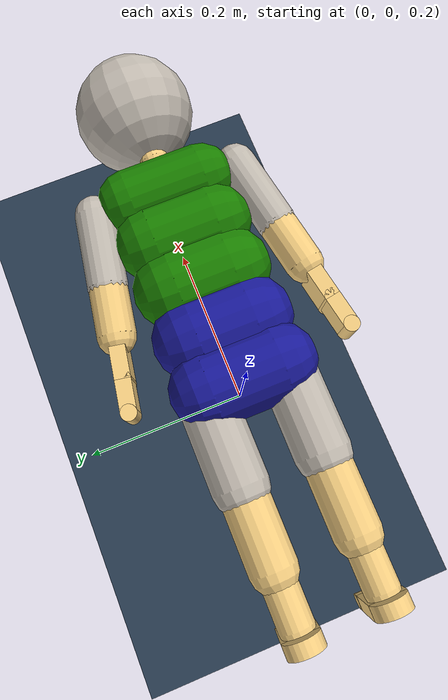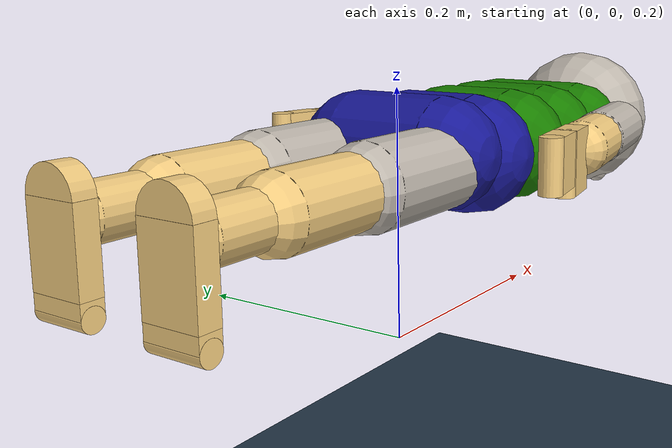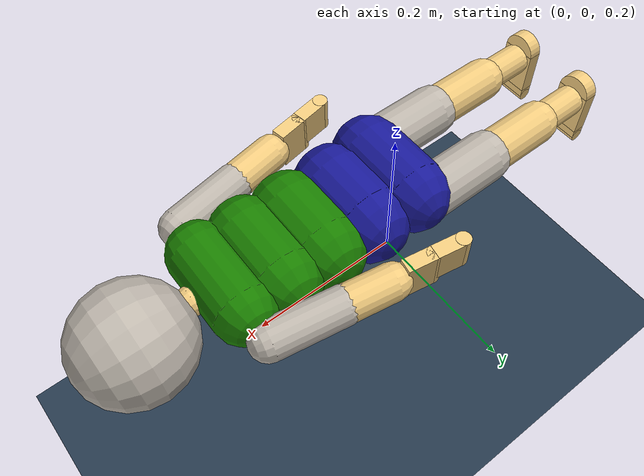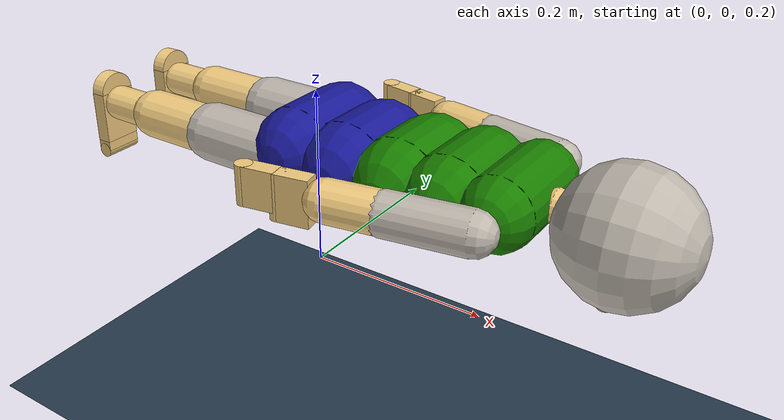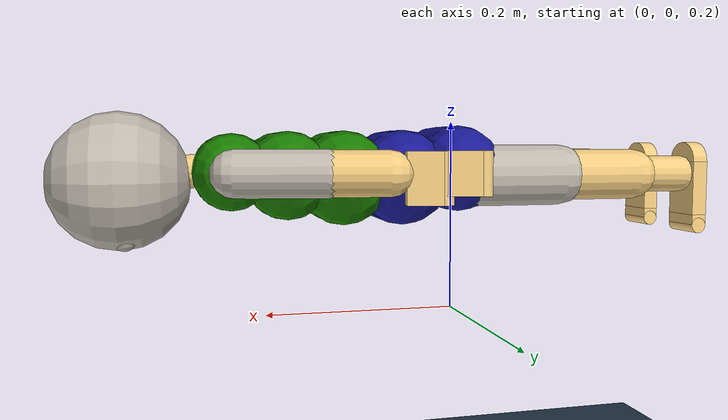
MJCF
<mujoco model="MIMo">

    <compiler inertiafromgeom="true" angle="degree"/>
    <option timestep="0.005" iterations="50" tolerance="1e-10" solver="Newton" jacobian="dense" cone="elliptic" impratio="1.0"/>
    <size nconmax="1000" njmax="5000" nstack="10000000" nuser_cam="3"/>

    <visual>
        <map force="0.1" zfar="30" znear="0.005"/>
        <rgba haze="0.15 0.25 0.35 1"/>
        <quality shadowsize="4096"/>
        <global offwidth="800" offheight="800"/>
    </visual>

    <asset>

        <texture type="skybox" builtin="gradient" rgb1="0.3 0.5 0.7" rgb2="0 0 0" width="512" height="512"/>

        <texture name="texplane" type="2d" builtin="checker" rgb1=".2 .3 .4" rgb2=".1 0.15 0.2" width="512" height="512" mark="cross" markrgb=".8 .8 .8"/>
        <material name="matplane" reflectance="0.3" texture="texplane" texrepeat="1 1" texuniform="true"/>

        <material name="orange" rgba="0.9 0.4 0 1" specular=".2" shininess=".8"/>

    </asset>

	<size nuser_actuator="3" />

	<default>
		<default class="mimo">
        	<joint limited="true" damping=".1" stiffness=".1" armature="0.001" solimplimit="0.98 0.99 0.001 .5 1" solreflimit="0.02 1" />
        	<geom condim="3" material="skin" friction="1 0.005 0.0002" solimp="0.95 0.99 0.001 0.5 1" solref="0.005 1" />
        	<motor ctrlrange="-1 1" ctrllimited="true" forcelimited="true" />
		</default>
    </default>

  <include file="scene_texture_incl.xml" />

	<contact>
		<pair geom1="lb" geom2="ub1" condim="1" />
		<exclude body1="left_eye" body2="upper_body" />
		<exclude body1="right_eye" body2="upper_body" />
	</contact>

	<tendon>
		<fixed class="mimo" name="hip_bend" limited="true" range="-.01 .01">
			<joint joint="robot:hip_bend1" coef="1" />
			<joint joint="robot:hip_bend2" coef="-1" />
		</fixed>
		<fixed class="mimo" name="hip_rotation" limited="true" range="-.01 .01">
			<joint joint="robot:hip_rot1" coef="1" />
			<joint joint="robot:hip_rot2" coef="-1" />
		</fixed>
		<fixed class="mimo" name="hip_lean" limited="true" range="-.01 .01">
			<joint joint="robot:hip_lean1" coef="1" />
			<joint joint="robot:hip_lean2" coef="-.5" />
		</fixed>
		<fixed class="mimo" name="head_limits1" limited="true" range="-2.1 2.1">
			<joint joint="robot:head_swivel" coef="1" />
			<joint joint="robot:head_tilt_side" coef="1" />
		</fixed>
		<fixed class="mimo" name="head_limits2" limited="true" range="-2.1 2.1">
			<joint joint="robot:head_tilt" coef="1" />
			<joint joint="robot:head_tilt_side" coef="1" />
		</fixed>
		<fixed class="mimo" name="head_limits3" limited="true" range="-2.1 2.1">
			<joint joint="robot:head_swivel" coef="1" />
			<joint joint="robot:head_tilt" coef="1" />
		</fixed>
		<fixed class="mimo" name="head_limits1_sym" limited="true" range="-2.1 2.1">
			<joint joint="robot:head_swivel" coef="1" />
			<joint joint="robot:head_tilt_side" coef="-1" />
		</fixed>
		<fixed class="mimo" name="head_limits2_sym" limited="true" range="-2.1 2.1">
			<joint joint="robot:head_tilt" coef="1" />
			<joint joint="robot:head_tilt_side" coef="-1" />
		</fixed>
		<fixed class="mimo" name="head_limits3_sym" limited="true" range="-2.1 2.1">
			<joint joint="robot:head_swivel" coef="1" />
			<joint joint="robot:head_tilt" coef="-1" />
		</fixed>
	</tendon>

	<sensor>
		<accelerometer name="vestibular_acc" site="vestibular" />
		<gyro name="vestibular_gyro" site="vestibular" />

		<torque name="proprio:neck" site="torque_neck" />
		<torque name="proprio:left_eye" site="torque_left_eye" />
		<torque name="proprio:right_eye" site="torque_right_eye" />

		<torque name="proprio:chest" site="torque_chest" />
		<torque name="proprio:trunk_upper" site="torque_ub" />
		<torque name="proprio:trunk_lower" site="torque_lb" />

		<torque name="proprio:right_shoulder" site="torque_right_shoulder" />
		<torque name="proprio:right_elbow" site="torque_right_elbow" />
		<torque name="proprio:right_wrist" site="torque_right_wrist" />
		<torque name="proprio:right_fingers" site="torque_right_fingers" />

		<torque name="proprio:left_shoulder" site="torque_left_shoulder" />
		<torque name="proprio:left_elbow" site="torque_left_elbow" />
		<torque name="proprio:left_wrist" site="torque_left_wrist" />
		<torque name="proprio:left_fingers" site="torque_left_fingers" />

		<torque name="proprio:right_hip" site="torque_right_hip" />
		<torque name="proprio:right_knee" site="torque_right_knee" />
		<torque name="proprio:right_ankle" site="torque_right_ankle" />
		<torque name="proprio:right_toes" site="torque_right_toes" />

		<torque name="proprio:left_hip" site="torque_left_hip" />
		<torque name="proprio:left_knee" site="torque_left_knee" />
		<torque name="proprio:left_ankle" site="torque_left_ankle" />
		<torque name="proprio:left_toes" site="torque_left_toes" />

		<framelinvel name="kobayashi:left_wrist" objtype="site" objname="KOBAYASHI_LWrist" />
		<framelinvel name="kobayashi:right_wrist" objtype="site" objname="KOBAYASHI_RWrist" />
		<framelinvel name="kobayashi:left_ankle" objtype="site" objname="KOBAYASHI_LAnkle" />
		<framelinvel name="kobayashi:right_ankle" objtype="site" objname="KOBAYASHI_RAnkle" />
		<framelinvel name="kobayashi:torso" objtype="site" objname="KOBAYASHI_Torso" />
	</sensor>

  <include file="../../mimo/age/act/act_1_mo.xml" />

	<equality>
		<joint name="robot:hip_lean1" joint1="robot:hip_lean1" active="false" polycoef="0 1 0 0 0" />
		<joint name="robot:hip_rot1" joint1="robot:hip_rot1" active="false" polycoef="0 1 0 0 0" />
		<joint name="robot:hip_bend1" joint1="robot:hip_bend1" active="false" polycoef="0 1 0 0 0" />
		<joint name="robot:hip_lean2" joint1="robot:hip_lean2" active="false" polycoef="0 1 0 0 0" />
		<joint name="robot:hip_rot2" joint1="robot:hip_rot2" active="false" polycoef="0 1 0 0 0" />
		<joint name="robot:hip_bend2" joint1="robot:hip_bend2" active="false" polycoef="0 1 0 0 0" />
		<joint name="robot:head_swivel" joint1="robot:head_swivel" active="false" polycoef="0 1 0 0 0" />
		<joint name="robot:head_tilt" joint1="robot:head_tilt" active="false" polycoef="0 1 0 0 0" />
		<joint name="robot:head_tilt_side" joint1="robot:head_tilt_side" active="false" polycoef="0 1 0 0 0" />
		<joint name="robot:left_eye_horizontal" joint1="robot:left_eye_horizontal" active="false" polycoef="0 1 0 0 0" />
		<joint name="robot:left_eye_vertical" joint1="robot:left_eye_vertical" active="false" polycoef="0 1 0 0 0" />
		<joint name="robot:left_eye_torsional" joint1="robot:left_eye_torsional" active="false" polycoef="0 1 0 0 0" />
		<joint name="robot:right_eye_horizontal" joint1="robot:right_eye_horizontal" active="false" polycoef="0 1 0 0 0" />
		<joint name="robot:right_eye_vertical" joint1="robot:right_eye_vertical" active="false" polycoef="0 1 0 0 0" />
		<joint name="robot:right_eye_torsional" joint1="robot:right_eye_torsional" active="false" polycoef="0 1 0 0 0" />
		<joint name="robot:right_shoulder_horizontal" joint1="robot:right_shoulder_horizontal" active="false" polycoef="0 1 0 0 0" />
		<joint name="robot:right_shoulder_ad_ab" joint1="robot:right_shoulder_ad_ab" active="false" polycoef="0 1 0 0 0" />
		<joint name="robot:right_shoulder_rotation" joint1="robot:right_shoulder_rotation" active="false" polycoef="0 1 0 0 0" />
		<joint name="robot:right_elbow" joint1="robot:right_elbow" active="false" polycoef="0 1 0 0 0" />
		<joint name="robot:right_hand1" joint1="robot:right_hand1" active="false" polycoef="0 1 0 0 0" />
		<joint name="robot:right_hand2" joint1="robot:right_hand2" active="false" polycoef="0 1 0 0 0" />
		<joint name="robot:right_hand3" joint1="robot:right_hand3" active="false" polycoef="0 1 0 0 0" />
		<joint name="robot:right_fingers" joint1="robot:right_fingers" active="false" polycoef="0 1 0 0 0" />
		<joint name="robot:left_shoulder_horizontal" joint1="robot:left_shoulder_horizontal" active="false" polycoef="0 1 0 0 0" />
		<joint name="robot:left_shoulder_ad_ab" joint1="robot:left_shoulder_ad_ab" active="false" polycoef="0 1 0 0 0" />
		<joint name="robot:left_shoulder_rotation" joint1="robot:left_shoulder_rotation" active="false" polycoef="0 1 0 0 0" />
		<joint name="robot:left_elbow" joint1="robot:left_elbow" active="false" polycoef="0 1 0 0 0" />
		<joint name="robot:left_hand1" joint1="robot:left_hand1" active="false" polycoef="0 1 0 0 0" />
		<joint name="robot:left_hand2" joint1="robot:left_hand2" active="false" polycoef="0 1 0 0 0" />
		<joint name="robot:left_hand3" joint1="robot:left_hand3" active="false" polycoef="0 1 0 0 0" />
		<joint name="robot:left_fingers" joint1="robot:left_fingers" active="false" polycoef="0 1 0 0 0" />
		<joint name="robot:right_hip1" joint1="robot:right_hip1" active="false" polycoef="0 1 0 0 0" />
		<joint name="robot:right_hip2" joint1="robot:right_hip2" active="false" polycoef="0 1 0 0 0" />
		<joint name="robot:right_hip3" joint1="robot:right_hip3" active="false" polycoef="0 1 0 0 0" />
		<joint name="robot:right_knee" joint1="robot:right_knee" active="false" polycoef="0 1 0 0 0" />
		<joint name="robot:right_foot1" joint1="robot:right_foot1" active="false" polycoef="0 1 0 0 0" />
		<joint name="robot:right_foot2" joint1="robot:right_foot2" active="false" polycoef="0 1 0 0 0" />
		<joint name="robot:right_foot3" joint1="robot:right_foot3" active="false" polycoef="0 1 0 0 0" />
		<joint name="robot:right_toes" joint1="robot:right_toes" active="false" polycoef="0 1 0 0 0" />
		<joint name="robot:left_hip1" joint1="robot:left_hip1" active="false" polycoef="0 1 0 0 0" />
		<joint name="robot:left_hip2" joint1="robot:left_hip2" active="false" polycoef="0 1 0 0 0" />
		<joint name="robot:left_hip3" joint1="robot:left_hip3" active="false" polycoef="0 1 0 0 0" />
		<joint name="robot:left_knee" joint1="robot:left_knee" active="false" polycoef="0 1 0 0 0" />
		<joint name="robot:left_foot1" joint1="robot:left_foot1" active="false" polycoef="0 1 0 0 0" />
		<joint name="robot:left_foot2" joint1="robot:left_foot2" active="false" polycoef="0 1 0 0 0" />
		<joint name="robot:left_foot3" joint1="robot:left_foot3" active="false" polycoef="0 1 0 0 0" />
		<joint name="robot:left_toes" joint1="robot:left_toes" active="false" polycoef="0 1 0 0 0" />
	</equality>

    <equality>
        <weld body1="left_eye" body2="head"/>
        <weld body1="right_eye" body2="head"/>
    </equality>

    <worldbody>

        <geom name="floor" pos="0 0 0" size="0 0 .25" type="plane" material="matplane" condim="3"/>

        <light directional="false" diffuse=".4 .4 .4" specular="0 0 0" pos="0 0 10" dir="0 0 -1" castshadow="false"/>
        <light mode="targetbodycom" target="upper_body" directional="false" diffuse=".75 .75 .75" specular="0.3 0.3 0.3" pos="3 0 5" dir="0 0 -1"/>

        <body name="mimo_location" pos="0 0 0.35" euler="0 90 0">
            <freejoint name="mimo_location"/>
						<include file="../../mimo/age/body/body_6_mo.xml" />
        </body>

        <camera name="corner" pos="3 -3 3" fovy="20" mode="targetbody" target="mimo_location"/>
        <camera name="top" pos="0 0 1.4" euler="0 0 -90" mode="fixed"/>
        <camera name="side1" pos="2 0 .5" euler="90 90 0" mode="fixed"/>
        <camera name="side2" pos="0 2 .5" euler="90 180 0" mode="fixed"/>
        <camera name="closeup" pos="0.25 -0.25 1" mode="targetbody" target="mimo_location"/>

    </worldbody>

</mujoco>

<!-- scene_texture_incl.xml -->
<mujocoinclude>
  <asset>

		<texture name="tex_head_default" type="cube" fileright="../../tex/head_front.png" fileleft="../../tex/head_back.png" fileup="../../tex/head_left.png" filedown="../../tex/head_right.png" filefront="../../tex/head_top.png" rgb1="0.95 .8 .5" />
		<texture name="tex_head_happy" type="cube" fileright="../../tex/head_front_happy.png" fileleft="../../tex/head_back.png" fileup="../../tex/head_left.png" filedown="../../tex/head_right.png" filefront="../../tex/head_top.png" rgb1="0.95 .8 .5" />
		<texture name="tex_head_sad" type="cube" fileright="../../tex/head_front_sad.png" fileleft="../../tex/head_back.png" fileup="../../tex/head_left.png" filedown="../../tex/head_right.png" filefront="../../tex/head_top.png" rgb1="0.95 .8 .5" />
		<texture name="tex_head_surprised" type="cube" fileright="../../tex/head_front_surprised.png" fileleft="../../tex/head_back.png" fileup="../../tex/head_left.png" filedown="../../tex/head_right.png" filefront="../../tex/head_top.png" rgb1="0.95 .8 .5" />
		<texture name="tex_head_angry" type="cube" fileright="../../tex/head_front_angry.png" fileleft="../../tex/head_back.png" fileup="../../tex/head_left.png" filedown="../../tex/head_right.png" filefront="../../tex/head_top.png" rgb1="0.95 .8 .5" />
		<texture name="tex_head_disgusted" type="cube" fileright="../../tex/head_front_disgusted.png" fileleft="../../tex/head_back.png" fileup="../../tex/head_left.png" filedown="../../tex/head_right.png" filefront="../../tex/head_top.png" rgb1="0.95 .8 .5" />
		<texture name="tex_head_scared" type="cube" fileright="../../tex/head_front_scared.png" fileleft="../../tex/head_back.png" fileup="../../tex/head_left.png" filedown="../../tex/head_right.png" filefront="../../tex/head_top.png" rgb1="0.95 .8 .5" />
		<texture name="tex_top_sleeve" type="cube" fileright="../../tex/sleeve_right.png" fileleft="../../tex/sleeve_left.png" fileup="../../tex/sleeve_up.png" filedown="../../tex/sleeve_down.png" filefront="../../tex/sleeve_front.png" fileback="../../tex/sleeve_back.png" rgb1="0.95 .8 .5" />
		<texture name="tex_pants_leg" type="cube" fileright="../../tex/leg_right.png" fileleft="../../tex/leg_left.png" fileup="../../tex/leg_up.png" filedown="../../tex/leg_down.png" filefront="../../tex/leg_front.png" fileback="../../tex/leg_back.png" rgb1="0.95 .8 .5" />
		<texture name="tex_eye_left" type="cube" fileright="../../tex/eye_pupil_left.png" rgb1="1 1 1" />
		<texture name="tex_eye_right" type="cube" fileright="../../tex/eye_pupil_right.png" rgb1="1 1 1" />

		<material name="skin" rgba="0.95 0.8 0.5 1" specular=".15" shininess=".7" />
		<material name="buttons" rgba=".05 .05 .05 1" specular=".9" shininess=".9" />
		<material name="head" texture="tex_head_default" texuniform="true" specular=".0" shininess=".0" />
		<material name="top_up" rgba=".1 .5 0.0 1" specular=".0" shininess=".0" />
		<material name="top_middle" rgba=".1 .5 0.0 1" specular=".0" shininess=".0" />
		<material name="top_down" rgba=".1 .5 0.0 1" specular=".0" shininess=".0" />
		<material name="top_sleeve" texture="tex_top_sleeve" texuniform="true" specular=".0" shininess=".0" />
		<material name="pants_up" rgba="0.1 0.1 0.6 1" specular=".0" shininess=".0" />
		<material name="pants_down" rgba="0.1 0.1 0.6 1" specular=".0" shininess=".0" />
		<material name="pants_leg" texture="tex_pants_leg" texuniform="true" specular=".0" shininess=".0" />
		<material name="eye_left" texture="tex_eye_left" texuniform="true" specular=".0" shininess=".0" />
		<material name="eye_right" texture="tex_eye_right" texuniform="true" specular=".0" shininess=".0" />

	</asset>
</mujocoinclude>

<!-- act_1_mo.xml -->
<mujocoinclude>
  <actuator>
    <motor class="mimo" name="act:hip_bend" joint="robot:hip_bend1" gear="4.792849908097783" forcerange="-1 .765" user=".8574 32.93 22.97" />
    <motor class="mimo" name="act:hip_twist" joint="robot:hip_rot1" gear="1.6444277094891258" forcerange="-1 1" user="1.699 8.136 8.136" />
    <motor class="mimo" name="act:hip_lean" joint="robot:hip_lean1" gear="3.2843253150953613" forcerange="-1 1" user="1.278 1.264 1.264" />

    <motor class="mimo" name="act:chest_twist" joint="robot:chest_rot" gear="0.1630837397840455" forcerange="-1 1" user="1.699 8.136 8.136" />
    <motor class="mimo" name="act:chest_lean" joint="robot:chest_lean" gear="0.326167479568091" forcerange="-1 1" user="1.278 1.264 1.264" />

    <motor class="mimo" name="act:head_swivel" joint="robot:head_swivel" gear="1.0051784555238277" forcerange="-1 1" user=".6665 24.87 24.87" />
    <motor class="mimo" name="act:head_tilt" joint="robot:head_tilt" gear="1.8428271684603503" forcerange="-1 .55" user=".9338 31.39 16.86" />
    <motor class="mimo" name="act:head_tilt_side" joint="robot:head_tilt_side" gear="1.0051784555238277" forcerange="-1 1" user="1.068 15.69 15.69" />

    <motor class="mimo" name="act:left_eye_horizontal" joint="robot:left_eye_horizontal" gear="0.003015535366571483" forcerange="-1 1" user="5.110 .03025 .03025" />
    <motor class="mimo" name="act:left_eye_vertical" joint="robot:left_eye_vertical" gear="0.003015535366571483" forcerange="-1 1" user="6.179 .02619 .02771" />
    <motor class="mimo" name="act:left_eye_torsional" joint="robot:left_eye_torsional" gear="0.0020662001585767566" forcerange="-1 1" user="25.03 .003686 .003686" />
    <motor class="mimo" name="act:right_eye_horizontal" joint="robot:right_eye_horizontal" gear="0.003015535366571483" forcerange="-1 1" user="5.110 .03025 .03025" />
    <motor class="mimo" name="act:right_eye_vertical" joint="robot:right_eye_vertical" gear="0.003015535366571483" forcerange="-1 1" user="6.179 .02619 .02771" />
    <motor class="mimo" name="act:right_eye_torsional" joint="robot:right_eye_torsional" gear="0.0020662001585767566" forcerange="-1 1" user="25.03 .003686 .003686" />

    <motor class="mimo" name="act:right_shoulder_horizontal" joint="robot:right_shoulder_horizontal" gear="0.8428609627943823" forcerange="-1 1" user="1.811 18.80 15.30" />
    <motor class="mimo" name="act:right_shoulder_abduction" joint="robot:right_shoulder_ad_ab" gear="1.873024361765294" forcerange="-.6875 1" user=".8793 44.17 69.23" />
    <motor class="mimo" name="act:right_shoulder_internal" joint="robot:right_shoulder_rotation" gear="1.1706402261033086" forcerange="-1 .64" user="1.498 25.09 17.10" />
    <motor class="mimo" name="act:right_elbow" joint="robot:right_elbow" gear="1.755558656111056" forcerange="-1 .83" user="1.566 35.43 27.04" />
    <motor class="mimo" name="act:right_wrist_rotation" joint="robot:right_hand1" gear="0.29698396926039833" forcerange="-1 1" user="1.513 7.842 7.842" />
    <motor class="mimo" name="act:right_wrist_flexion" joint="robot:right_hand2" gear="0.5260858884041343" forcerange="-1 .57" user="1.455 13.66 7.874" />
    <motor class="mimo" name="act:right_wrist_ulnar" joint="robot:right_hand3" gear="0.4030496725676834" forcerange="-.87 1" user="2.254 5.155 6.021" />
    <motor class="mimo" name="act:right_fingers" joint="robot:right_fingers" gear="0.29274134112810696" forcerange="-1 .33" user="3.019 6.854 2.551" />

    <motor class="mimo" name="act:left_shoulder_horizontal" joint="robot:left_shoulder_horizontal" gear="0.8428609627943823" forcerange="-1 1" user="1.811 18.80 15.30" />
    <motor class="mimo" name="act:left_shoulder_abduction" joint="robot:left_shoulder_ad_ab" gear="1.873024361765294" forcerange="-.6875 1" user=".8793 44.17 69.23" />
    <motor class="mimo" name="act:left_shoulder_internal" joint="robot:left_shoulder_rotation" gear="1.1706402261033086" forcerange="-1 .64" user="1.498 25.09 17.10" />
    <motor class="mimo" name="act:left_elbow" joint="robot:left_elbow" gear="1.755558656111056" forcerange="-1 .83" user="1.566 35.43 27.04" />
    <motor class="mimo" name="act:left_wrist_rotation" joint="robot:left_hand1" gear="0.29698396926039833" forcerange="-1 1" user="1.513 7.842 7.842" />
    <motor class="mimo" name="act:left_wrist_flexion" joint="robot:left_hand2" gear="0.5260858884041343" forcerange="-1 .57" user="1.455 13.66 7.874" />
    <motor class="mimo" name="act:left_wrist_ulnar" joint="robot:left_hand3" gear="0.4030496725676834" forcerange="-.87 1" user="2.254 5.155 6.021" />
    <motor class="mimo" name="act:left_fingers" joint="robot:left_fingers" gear="0.29274134112810696" forcerange="-1 .33" user="3.019 6.854 2.551" />

    <motor class="mimo" name="act:right_hip_flex" joint="robot:right_hip1" gear="2.938787965593561" forcerange="-1 1" user="1.083 71.25 92.49" />
    <motor class="mimo" name="act:right_hip_abduction" joint="robot:right_hip2" gear="2.292254613162978" forcerange="-1 1" user="1.488 24.81 29.20" />
    <motor class="mimo" name="act:right_hip_rotation" joint="robot:right_hip3" gear="1.3004136747751507" forcerange="-.75 1" user="1.860 12.32 15.78" />
    <motor class="mimo" name="act:right_knee" joint="robot:right_knee" gear="4.119053990913367" forcerange="-.65 1" user="1.450 63.16 89.27" />
    <motor class="mimo" name="act:right_foot_flexion" joint="robot:right_foot1" gear="1.4039955411734266" forcerange="-1 .5" user="1.430 21.34 11.87" />
    <motor class="mimo" name="act:right_foot_inversion" joint="robot:right_foot2" gear="0.43085577453999335" forcerange="-.91 1" user="1.988 4.184 4.645" />
    <motor class="mimo" name="act:right_foot_rotation" joint="robot:right_foot3" gear="0.44571287021378625" forcerange="-1 1" user="2.688 3.868 3.625" />
    <motor class="mimo" name="act:right_toes" joint="robot:right_toes" gear="0.12257103930879122" forcerange="-1 .3" user="1.290 2.947 .8440" />

    <motor class="mimo" name="act:left_hip_flex" joint="robot:left_hip1" gear="2.938787965593561" forcerange="-1 1" user="1.083 71.25 92.49" />
    <motor class="mimo" name="act:left_hip_abduction" joint="robot:left_hip2" gear="2.292254613162978" forcerange="-1 1" user="1.488 24.81 29.20" />
    <motor class="mimo" name="act:left_hip_rotation" joint="robot:left_hip3" gear="1.3004136747751507" forcerange="-.75 1" user="1.860 12.32 15.78" />
    <motor class="mimo" name="act:left_knee" joint="robot:left_knee" gear="4.119053990913367" forcerange="-.65 1" user="1.450 63.16 89.27" />
    <motor class="mimo" name="act:left_foot_flexion" joint="robot:left_foot1" gear="1.4039955411734266" forcerange="-1 .5" user="1.430 21.34 11.87" />
    <motor class="mimo" name="act:left_foot_inversion" joint="robot:left_foot2" gear="0.43085577453999335" forcerange="-.91 1" user="1.988 4.184 4.645" />
    <motor class="mimo" name="act:left_foot_rotation" joint="robot:left_foot3" gear="0.44571287021378625" forcerange="-1 1" user="2.688 3.868 3.625" />
    <motor class="mimo" name="act:left_toes" joint="robot:left_toes" gear="0.12257103930879122" forcerange="-1 .3" user="1.290 2.947 .8440" />
  </actuator>
</mujocoinclude>

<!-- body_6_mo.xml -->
<mujocoinclude>
  <body childclass="mimo" name="hip" pos="0 0 0">

		<geom name="lb" type="capsule" size="0.0437457875214777 0.0391889346546571 0.0" mass="0.8768868439294774" material="pants_down" pos="-0.002 0.0 0.004556852866820595" euler="90 0 0" />
		<site name="lowerBody_center" type="sphere" size=".01 .01 .01" pos="0 0 0" />
		<site name="BODY_25:MidHip" type="sphere" size=".005" pos="0.005 0.0 -0.007" rgba="0 0 0 1" />
		<body name="lower_body" pos="0.002 0.0 0.06926416357567303">
			<joint name="robot:hip_lean1" type="hinge" pos="0.0 0.0 -0.048302640388298304" axis="1 0 0" range="-14 14" stiffness="3.38" damping="0.77" frictionloss=".049" armature="0.01" />
			<joint name="robot:hip_rot1" type="hinge" pos="0.0 0.0 -0.048302640388298304" axis="0 0 1" range="-18 18" stiffness="1.45" damping="0.29" frictionloss=".018" armature="0.01" />
			<joint name="robot:hip_bend1" type="hinge" pos="0.0 0.0 -0.048302640388298304" axis="0 1 0" range="-17 30.5" stiffness="2.20" damping="0.84" frictionloss="0.040" armature="0.01" />
			<site name="torque_lb" type="sphere" size="0.01" pos="0 0 0" group="4" />
			<geom name="cb" type="capsule" size="0.048302640388298304 0.031897970067744155 0.0" mass="1.002621395704932" material="pants_up" contype="0" pos="0.005 0.0 -0.007290964586912951" euler="90 0 0" />

			<body name="upper_body" pos="-0.002 0.0 0.08293472217613482">

				<site name="KOBAYASHI_Torso" type="sphere" size="0.01" pos=".047391269814934175 0 0.047391269814934175" rgba="1 0 0 0" />
				<joint name="robot:hip_lean2" type="hinge" pos="0.0 0.0 -0.047391269814934175" axis="1 0 0" range="-27 27" stiffness="1.69" damping="0.38" frictionloss=".024" armature="0.01" />
				<joint name="robot:hip_rot2" type="hinge" pos="0.0 0.0 -0.047391269814934175" axis="0 0 1" range="-18 18" stiffness="1.45" damping="0.29" frictionloss=".018" armature="0.01" />
				<joint name="robot:hip_bend2" type="hinge" pos="0.0 0.0 -0.047391269814934175" axis="0 1 0" range="-17 30.5" stiffness="2.20" damping="0.84" frictionloss="0.040" armature="0.01" />
				<site name="torque_ub" type="sphere" size="0.01" pos="0 0 0" group="4" />
				<geom name="ub1" type="capsule" size="0.047391269814934175 0.031897970067744155 0.0" mass="0.8237467744855468" material="top_down" pos="0.007 0.0 -0.0291638583476518" euler="90 0 0" />
				<geom name="ub2" type="capsule" size="0.04374578752147771 0.03554345236120062 0.0" mass="0.7190562957947261" material="top_middle" pos="0.004 0.0 0.027341117200923568" euler="90 0 0" />
				<geom name="neck" type="capsule" size="0.017150440505860117 1e-06 0.0" mass="0.0" material="skin" pos="0.0 0.0 0.11939054511069958" euler="0 0 0" />

				<body name="chest" pos="0.0 0.0 0.0820233516027707">
					<site name="BODY_25:Neck" type="sphere" size=".005 .005 .005" pos="0.0 0.0 0.0" rgba="0 0 0 1" />
					<joint name="robot:chest_lean" type="hinge" pos="0 0 0" axis="1 0 0" range="-9 9" stiffness="1.69" damping="0.38" frictionloss=".024" armature="0.01" />
					<joint name="robot:chest_rot" type="hinge" pos="0 0 0" axis="0 0 1" range="-18 18" stiffness="1.45" damping="0.29" frictionloss=".018" armature="0.01" />
					<site name="torque_chest" type="sphere" size="0.01" pos="0 0 0" group="4" />
					<geom name="ub3" type="capsule" size="0.03736619350792888 0.04283441694811358 0.0" mass="0.546313221049641" material="top_up" pos="0 0 0" euler="90 0 0" />

					<body name="right_upper_arm" pos="0.0 -0.08582156278323978 0.0" euler="170 0 0">

						<site name="BODY_25:RShoulder" type="sphere" size=".005 .005 .005" pos="0.0 0.0 0.0" rgba="0 0 0 1" />
						<joint name="robot:right_shoulder_horizontal" type="hinge" pos="0 0 0" axis="0 1 -4" range="-28 118" stiffness=".09" damping=".05" frictionloss=".0009" armature="0.004" />
						<joint name="robot:right_shoulder_ad_ab" type="hinge" pos="0 0 0" axis="-1 0 0" range="-84 183" stiffness=".11" damping=".10" frictionloss=".0014" armature="0.004" />
						<joint name="robot:right_shoulder_rotation" type="hinge" pos="0 0 0" axis="0 0 -1" range="-99 67" stiffness=".12" damping=".07" frictionloss=".0008" armature="0.004" />
						<site name="torque_right_shoulder" type="sphere" size="0.01" pos="0 0 0" group="4" />
						<geom name="right_uarm1" type="capsule" material="top_sleeve" size="0.022483809308789283 0.04275018942756355 0.0" mass="0.19541721010750204" pos="0.0 0.0 0.04275018942756355" euler="0 0 0" />
						<body name="right_lower_arm" pos="0.0 -0.0 0.0855003788551271" euler="0 0 0">

							<site name="KOBAYASHI_RWrist" type="sphere" size=".01" pos="0 0.02366 .056" rgba="1 0 0 0" />
							<site name="BODY_25:RElbow" type="sphere" size=".005 .005 .005" pos="0.0 0.0 0.0" rgba="0 0 0 1" />
							<joint name="robot:right_elbow" type="hinge" pos="0 0 0" axis="0 -1 0" springref="-20" range="-146 5" stiffness=".13" damping=".11" frictionloss=".030" armature="0.002" />
							<site name="torque_right_elbow" type="sphere" size="0.01" pos="0 0 0" group="4" />
							<geom name="right_larm" type="capsule" size="0.021708349149845776 0.0283664069880474 0.0" mass="0.1351234166284339" pos="0.0 0.0 0.0283664069880474" />
							<body name="right_hand" pos="0.0 -0.0 0.07035444527790545" euler="0 0 0">
								<site name="BODY_25:RWrist" type="sphere" size=".005 .005 .005" pos="0.0 0.0 0.0" />
								<joint name="robot:right_hand1" type="hinge" pos="0 0 0" axis="0 0 -1" springref="-20" range="-90 90" stiffness=".22" damping=".03" frictionloss=".007" armature="0.001" />
								<joint name="robot:right_hand2" type="hinge" pos="0 0 0" axis="-1 0 0" range="-92 86" stiffness=".33" damping=".11" frictionloss=".007" armature="0.001" />
								<joint name="robot:right_hand3" type="hinge" pos="0 0 0" axis="0 1 0" range="-53 48" stiffness=".38" damping=".11" frictionloss=".007" armature="0.001" />
								<site name="torque_right_wrist" type="sphere" size="0.01" pos="0 0 0" group="4" />
								<geom name="geom:right_hand1" type="box" size="0.024860296384478134 0.00881739308339688 0.017970420575578953" mass="0.02908143889568377" pos="0.00440869654169844 0.0 0.017970420575578953" />
								<geom name="geom:right_hand2" type="cylinder" size="0.00901739308339688 0.024860296384478134 0.0" mass="0.011196587482731345" pos="0.00440869654169844 0.0 0.03594084115115791" euler="0 90 0" />
								<body name="right_fingers" pos="0.0 -0.0 0.03594084115115791">
									<joint name="robot:right_fingers" type="hinge" pos="0 0 0" axis="-1 0 0" springref="-40" range="-160 8" stiffness=".017" damping=".018" frictionloss=".0023" armature="0.0001" />
									<site name="torque_right_fingers" type="sphere" size="0.01" pos="0 0 0" group="4" />
									<geom name="geom:right_fingers1" type="box" size="0.020906624392857284 0.00881739308339688 0.017884024322811748" mass="0.024406588510772854" pos="0.0 0.0 0.017884024322811748" friction="5 0.02 0.01" />
									<geom name="geom:right_fingers2" type="cylinder" size="0.00901739308339688 0.021106624392857282 0.0" mass="0.009488825275122926" pos="0.0 0.0 0.035768048645623496" euler="0 90 0" friction="5 0.02 0.01" />
								</body>
							</body>
						</body>
					</body>

					<body name="left_upper_arm" pos="0.0 0.08582156278323978 0.0" euler="-170 0 0">

						<site name="BODY_25:LShoulder" type="sphere" size=".005 .005 .005" pos="0.0 0.0 0.0" rgba="0 0 0 1" />
						<joint name="robot:left_shoulder_horizontal" type="hinge" pos="0 0 0" axis="0 1 4" range="-28 118" stiffness=".09" damping=".05" frictionloss=".0009" armature="0.004" />
						<joint name="robot:left_shoulder_ad_ab" type="hinge" pos="0 0 0" axis="1 0 0" range="-84 183" stiffness=".11" damping=".10" frictionloss=".0014" armature="0.004" />
						<joint name="robot:left_shoulder_rotation" type="hinge" pos="0 0 0" axis="0 0 1" range="-99 67" stiffness=".12" damping=".07" frictionloss=".0008" armature="0.004" />
						<site name="torque_left_shoulder" type="sphere" size="0.01" pos="0 0 0" group="4" />
						<geom name="left_uarm1" type="capsule" material="top_sleeve" size="0.022483809308789283 0.04275018942756355 0.0" mass="0.19541721010750204" pos="0.0 0.0 0.04275018942756355" euler="0 0 0" />
						<body name="left_lower_arm" pos="0.0 0.0 0.0855003788551271" euler="0 0 0">

							<site name="KOBAYASHI_LWrist" type="sphere" size=".01" pos="0 -0.02366 .056" rgba="1 0 0 0" />
							<site name="BODY_25:LElbow" type="sphere" size=".005 .005 .005" pos="0.0 0.0 0.0" rgba="0 0 0 1" />
							<joint name="robot:left_elbow" type="hinge" pos="0 0 0" axis="0 -1 0" springref="-20" range="-146 5" stiffness=".13" damping=".11" frictionloss=".030" armature="0.002" />
							<site name="torque_left_elbow" type="sphere" size="0.01" pos="0 0 0" group="4" />
							<geom name="left_larm" type="capsule" size="0.021708349149845776 0.0283664069880474 0.0" mass="0.1351234166284339" pos="0.0 0.0 0.0283664069880474" />
							<body name="left_hand" pos="0.0 0.0 0.07035444527790545" euler="0 0 0">
								<site name="BODY_25:LWrist" type="sphere" size=".005 .005 .005" pos="0.0 0.0 0.0" rgba="0 0 0 1" />
								<joint name="robot:left_hand1" type="hinge" pos="0 0 0" axis="0 0 1" springref="-20" range="-90 90" stiffness=".22" damping=".03" frictionloss=".007" armature="0.001" />
								<joint name="robot:left_hand2" type="hinge" pos="0 0 0" axis="1 0 0" range="-92 86" stiffness=".33" damping=".11" frictionloss=".007" armature="0.001" />
								<joint name="robot:left_hand3" type="hinge" pos="0 0 0" axis="0 1 0" range="-53 48" stiffness=".38" damping=".11" frictionloss=".007" armature="0.001" />
								<site name="torque_left_wrist" type="sphere" size="0.01" pos="0 0 0" group="4" />
								<geom name="geom:left_hand1" type="box" size="0.024860296384478134 0.00881739308339688 0.017970420575578953" mass="0.02908143889568377" pos="0.00440869654169844 0.0 0.017970420575578953" />
								<geom name="geom:left_hand2" type="cylinder" size="0.00901739308339688 0.024860296384478134 0.0" mass="0.011196587482731345" pos="0.00440869654169844 0.0 0.03594084115115791" euler="0 90 0" />
								<body name="left_fingers" pos="0.0 0.0 0.03594084115115791">
									<joint name="robot:left_fingers" type="hinge" pos="0 0 0" axis="1 0 0" springref="-40" range="-160 8" stiffness=".017" damping=".018" frictionloss=".0023" armature="0.0001" />
									<site name="torque_left_fingers" type="sphere" size="0.01" pos="0 0 0" group="4" />
									<geom name="geom:left_fingers1" type="box" size="0.020906624392857284 0.00881739308339688 0.017884024322811748" mass="0.024406588510772854" pos="0.0 0.0 0.017884024322811748" friction="5 0.02 0.01" />
									<geom name="geom:left_fingers2" type="cylinder" size="0.00901739308339688 0.021106624392857282 0.0" mass="0.009488825275122926" pos="0.0 0.0 0.035768048645623496" euler="0 90 0" friction="5 0.02 0.01" />
								</body>
							</body>
						</body>
					</body>
				</body>
				<body name="head" pos="0.0 0.0 0.11939154511069958">
					<geom name="head" type="sphere" size="0.06860176202344047 0.0 0.0" mass="1.4430893269165317" material="head" pos="0.00933357306441367 0.0 0.06860176202344047" />
					<site name="vestibular" type="sphere" size="0.01" pos="0.01 0.0 0.06860176202344047" group="4" />
					<site name="torque_neck" type="sphere" size="0.01" pos="0 0 0" group="4" />
					<joint name="robot:head_swivel" type="hinge" pos="0 0 0" axis="0 0 1" range="-111 111" stiffness=".23" damping=".29" frictionloss=".018" armature="0.005" />
					<joint name="robot:head_tilt" type="hinge" pos="0.0 0.0 0.011433627003906746" axis="0 1 0" range="-70 81" stiffness=".45" damping=".53" frictionloss=".018" armature="0.005" />
					<joint name="robot:head_tilt_side" type="hinge" pos="0.0 0.0 0.022867254007813493" axis="1 0 0" range="-70 70" stiffness=".37" damping=".29" frictionloss=".018" armature="0.005" />
					<body name="left_eye" pos="0.0653350114508957 0.022867254007813493 0.0628849485214871">
						<site name="BODY_25:LEye" type="sphere" size=".005 .005 .005" pos="0.0 0.0 0.0" rgba="0 0 0 1" />
						<site name="torque_left_eye" type="sphere" size="0.01" pos="0 0 0" group="4" />
						<joint name="robot:left_eye_horizontal" type="hinge" pos="0 0 0" axis="0 0 1" range="-45 45" stiffness=".00065" damping=".00042" frictionloss=".000054" armature=".0002" />
						<joint name="robot:left_eye_vertical" type="hinge" pos="0 0 0" axis="0 -1 0" range="-47 33" stiffness=".00065" damping=".00042" frictionloss=".000054" armature=".0002" />
						<joint name="robot:left_eye_torsional" type="hinge" pos="0 0 0" axis="-1 0 0" range="-8 8" stiffness=".00267" damping=".00042" frictionloss=".000037" armature=".0002" />
						<geom name="geom:left_eye1" type="sphere" material="eye_left" size="0.010500269697465378 0.0 0.0" mass="0.0051022005445127555" pos="0 0 0" />
						<camera name="eye_left" mode="fixed" fovy="60" pos="0.01125 0 0" euler="90 -90 0" />
					</body>
					<body name="right_eye" pos="0.0653350114508957 -0.022867254007813493 0.0628849485214871">
						<site name="BODY_25:REye" type="sphere" size=".005 .005 .005" pos="0.0 0.0 0.0" rgba="0 0 0 1" />
						<site name="torque_right_eye" type="sphere" size="0.01" pos="0 0 0" group="4" />
						<joint name="robot:right_eye_horizontal" type="hinge" pos="0 0 0" axis="0 0 -1" range="-45 45" stiffness=".00065" damping=".00042" frictionloss=".000054" armature=".0002" />
						<joint name="robot:right_eye_vertical" type="hinge" pos="0 0 0" axis="0 -1 0" range="-47 33" stiffness=".00065" damping=".00042" frictionloss=".000054" armature=".0002" />
						<joint name="robot:right_eye_torsional" type="hinge" pos="0 0 0" axis="1 0 0" range="-8 8" stiffness=".00267" damping=".00042" frictionloss=".000037" armature=".0002" />
						<geom name="geom:right_eye1" type="sphere" material="eye_right" size="0.010500269697465378 0.0 0.0" mass="0.0051022005445127555" pos="0 0 0" />
						<camera name="eye_right" mode="fixed" fovy="60" pos="0.01125 0 0" euler="90 -90 0" />
					</body>
					<site name="BODY_25:Nose" type="sphere" size=".005" pos="0.06393497549123364 0.0 0.04060104283019946" rgba="0 0 0 1" />
					<site name="BODY_25:LEar" type="sphere" size=".005" pos="0.01 0.058334831652585434 0.05366804512037861" rgba="0 0 0 1" />
					<site name="BODY_25:REar" type="sphere" size=".005" pos="0.01 -0.058334831652585434 0.05366804512037861" rgba="0 0 0 1" />
				</body>
			</body>
		</body>

		<body name="right_upper_leg" pos="0.005 -0.046479899241570054 -0.007">

			<joint name="robot:right_hip1" type="hinge" pos="0 0 0" axis="0 1 0" springref="-10" range="-133 20" stiffness="1.72" damping="1.27" frictionloss=".08" armature=".005" />
			<joint name="robot:right_hip2" type="hinge" pos="0 0 0" axis="1 0 0" range="-51 17" stiffness="3.51" damping="1.99" frictionloss=".062" armature=".005" />
			<joint name="robot:right_hip3" type="hinge" pos="0 0 0" axis="0 0 -1" range="-32 41" stiffness="2.16" damping="0.75" frictionloss=".027" armature=".005" />
			<site name="torque_right_hip" type="sphere" size="0.01" pos="0 0 0" group="4" />
			<site name="BODY_25:RHip" type="sphere" size=".005 .005 .005" pos="0.0 0.0 0.0" rgba="0 0 0 1" />
			<geom name="geom:right_upper_leg1" type="capsule" material="pants_leg" contype="2" conaffinity="3" size="0.03158002142576722 0.046565148492024165 0.0" mass="0.4519785882442152" pos="0.0 0.0 -0.04805523324376894" euler="0 0 0" />
			<body name="right_lower_leg" pos="0.0 -0.0 -0.1097251913435586">

				<site name="KOBAYASHI_RAnkle" type="sphere" size=".01" pos=".01937078148887719 0 -.1131" rgba="1 0 0 0" />
				<joint name="robot:right_knee" type="hinge" pos="0 0 0" axis="0 -1 0" springref="-30" range="-145 4" stiffness="1.63" damping="0.53" frictionloss=".065" armature=".003" />
				<site name="torque_right_knee" type="sphere" size="0.01" pos="0 0 0" group="4" />
				<site name="BODY_25:RKnee" type="sphere" size=".005 .005 .005" pos="0.0 0.0 0.0" rgba="0 0 0 1" />
				<geom name="geom:right_lower_leg1" type="capsule" size="0.02655451594037203 0.03580540871847145 0.0" mass="0.23667208338313775" pos="0.0 0.0 -0.03580540871847145" euler="0 0 0" />
				<geom name="geom:right_lower_leg2" type="capsule" size="0.01937078148887719 0.022785260093572745 0.0" mass="0.08389224884187407" pos="0.0 0.0 -0.10741622615541435" euler="0 0 0" />
				<body name="right_foot" pos="0.0 -0.0 -0.1432216348738858">
					<joint name="robot:right_foot1" type="hinge" pos="0.0 -0.0 0.012383732652821812" axis="0 -1 0" springref="-10" range="-63 32" stiffness="1.29" damping="0.6" frictionloss=".019" armature=".003" />
					<joint name="robot:right_foot2" type="hinge" pos="0.0 -0.0 0.012383732652821812" axis="1 0 0" range="-33 31" stiffness="0.96" damping="0.37" frictionloss=".011" armature=".0025" />
					<joint name="robot:right_foot3" type="hinge" pos="0.0 -0.0 0.012383732652821812" axis="0 0 1" range="-20 30" stiffness="1.15" damping="0.38" frictionloss=".012" armature=".002" />
					<site name="torque_right_ankle" type="sphere" size="0.01" pos="0 0 0" group="4" />
					<site name="BODY_25:RAnkle" type="sphere" size=".005" pos="0.0 0.0 0.012383732652821812" rgba="0 0 0 1" />
					<site name="BODY_25:RHeel" type="sphere" size=".005" pos="-0.02871295393904682 0.0 0.0" rgba="0 0 0 1" />
					<geom name="geom:right_foot1" type="cylinder" size="0.02084967224784996 0.008155821768547875 0.0" mass="0.018593163103900245" pos="-0.013125921800707117 0.0 0.0" euler="0 0 0" />
					<geom name="geom:right_foot2" type="box" size="0.02871295393904682 0.02094967224784996 0.008255821768547875" mass="0.033201922295996535" pos="0.015587032138339703 0.0 0.0" euler="0 0 0" friction="2 0.02 0.01" />
					<geom name="geom:right_foot3" type="cylinder" size="0.008155821768547875 0.02074967224784996 0.0" mass="0.007200188686721939" pos="0.04429998607738652 0.0 0.0" euler="90 0 0" friction="2 0.02 0.01" />
					<body name="right_toes" pos="0.04429998607738652 -0.0 0.0">
						<joint name="robot:right_toes" type="hinge" pos="0 0 0" axis="0 -1 0" range="-60 80" frictionloss=".005" armature=".0005" stiffness=".106" damping=".04" />
						<site name="torque_right_toes" type="sphere" size="0.01" pos="0 0 0" group="4" />
						<geom name="geom:right_toes1" type="box" size="0.005742590787809363 0.02084967224784996 0.008155821768547875" mass="0.00613439206210926" pos="0.005742590787809363 0.0 0.0" euler="0 0 0" friction="2 0.02 0.01" />
						<geom name="geom:right_toes2" type="cylinder" size="0.008255821768547875 0.02094967224784996 0.0" mass="0.007002422511042967" pos="0.011485181575618727 0.0 0.0" euler="90 0 0" friction="2 0.02 0.01" />
						<site name="BODY_25:RBigToe" type="sphere" size=".005" pos="0.009024071237986141 0.01005584267896798 0.0" rgba="0 0 0 1" />
						<site name="BODY_25:RSmallToe" type="sphere" size=".005" pos="0.008203701125441948 -0.01005584267896798 0.0" rgba="0 0 0 1" />
					</body>
				</body>
			</body>
		</body>

		<body name="left_upper_leg" pos="0.005 0.046479899241570054 -0.007">

			<site name="BODY_25:LHip" type="sphere" size=".005 .005 .005" pos="0.0 0.0 0.0" rgba="0 0 0 1" />
			<joint name="robot:left_hip1" type="hinge" pos="0 0 0" axis="0 1 0" springref="-10" range="-133 20" stiffness="1.72" damping="1.27" frictionloss=".08" armature=".005" />
			<joint name="robot:left_hip2" type="hinge" pos="0 0 0" axis="-1 0 0" range="-51 17" stiffness="3.51" damping="1.99" frictionloss=".062" armature=".005" />
			<joint name="robot:left_hip3" type="hinge" pos="0 0 0" axis="0 0 1" range="-32 41" stiffness="2.16" damping="0.75" frictionloss=".027" armature=".005" />
			<site name="torque_left_hip" type="sphere" size="0.01" pos="0 0 0" group="4" />
			<geom name="geom:left_upper_leg1" type="capsule" material="pants_leg" contype="2" conaffinity="3" size="0.03158002142576722 0.046565148492024165 0.0" mass="0.4519785882442152" pos="0.0 0.0 -0.04805523324376894" euler="0 0 0" />
			<body name="left_lower_leg" pos="0.0 0.0 -0.1097251913435586">

				<site name="KOBAYASHI_LAnkle" type="sphere" size=".01" pos=".01937078148887719 0 -.1131" rgba="1 0 0 0" />
				<joint name="robot:left_knee" type="hinge" pos="0 0 0" axis="0 -1 0" springref="-30" range="-145 4" stiffness="1.63" damping="0.53" frictionloss=".065" armature=".003" />
				<site name="torque_left_knee" type="sphere" size="0.01" pos="0 0 0" group="4" />
				<site name="BODY_25:LKnee" type="sphere" size=".005" pos="0.0 0.0 0.0" rgba="0 0 0 1" />
				<geom name="geom:left_lower_leg1" type="capsule" size="0.02655451594037203 0.03580540871847145 0.0" mass="0.23667208338313775" pos="0.0 0.0 -0.03580540871847145" euler="0 0 0" />
				<geom name="geom:left_lower_leg2" type="capsule" size="0.01937078148887719 0.022785260093572745 0.0" mass="0.08389224884187407" pos="0.0 0.0 -0.10741622615541435" euler="0 0 0" />
				<body name="left_foot" pos="0.0 0.0 -0.1432216348738858">
					<joint name="robot:left_foot1" type="hinge" pos="0.0 0.0 0.012383732652821812" axis="0 -1 0" springref="-10" range="-63 32" stiffness="1.29" damping="0.6" frictionloss=".019" armature=".003" />
					<joint name="robot:left_foot2" type="hinge" pos="0.0 0.0 0.012383732652821812" axis="-1 0 0" range="-33 31" stiffness="0.96" damping="0.37" frictionloss=".011" armature=".0025" />
					<joint name="robot:left_foot3" type="hinge" pos="0.0 0.0 0.012383732652821812" axis="0 0 -1" range="-20 30" stiffness="1.15" damping="0.38" frictionloss=".012" armature=".002" />
					<site name="torque_left_ankle" type="sphere" size="0.01" pos="0 0 0" group="4" />
					<site name="BODY_25:LAnkle" type="sphere" size=".005" pos="0.0 0.0 0.012383732652821812" rgba="0 0 0 1" />
					<site name="BODY_25:LHeel" type="sphere" size=".005" pos="-0.02871295393904682 0.0 0.0" rgba="0 0 0 1" />
					<geom name="geom:left_foot1" type="cylinder" size="0.02084967224784996 0.008155821768547875 0.0" mass="0.018593163103900245" pos="-0.013125921800707117 0.0 0.0" euler="0 0 0" />
					<geom name="geom:left_foot2" type="box" size="0.02871295393904682 0.02094967224784996 0.008255821768547875" mass="0.033201922295996535" pos="0.015587032138339703 0.0 0.0" euler="0 0 0" friction="2 0.02 0.01" />
					<geom name="geom:left_foot3" type="cylinder" size="0.008155821768547875 0.02074967224784996 0.0" mass="0.007200188686721939" pos="0.04429998607738652 0.0 0.0" euler="90 0 0" friction="2 0.02 0.01" />
					<body name="left_toes" pos="0.04429998607738652 0.0 0.0">
						<joint name="robot:left_toes" type="hinge" pos="0 0 0" axis="0 -1 0" range="-60 80" frictionloss=".005" armature=".0005" stiffness=".106" damping=".04" />
						<site name="torque_left_toes" type="sphere" size="0.01" pos="0 0 0" group="4" />
						<geom name="geom:left_toes1" type="box" size="0.005742590787809363 0.02084967224784996 0.008155821768547875" mass="0.00613439206210926" pos="0.005742590787809363 0.0 0.0" euler="0 0 0" friction="2 0.02 0.01" />
						<geom name="geom:left_toes2" type="cylinder" size="0.008255821768547875 0.02094967224784996 0.0" mass="0.007002422511042967" pos="0.011485181575618727 0.0 0.0" euler="90 0 0" friction="2 0.02 0.01" />
						<site name="BODY_25:LBigToe" type="sphere" size=".005" pos="0.009024071237986141 -0.01005584267896798 0.0" rgba="0 0 0 1" />
						<site name="BODY_25:LSmallToe" type="sphere" size=".005" pos="0.008203701125441948 0.01005584267896798 0.0" rgba="0 0 0 1" />
					</body>
				</body>
			</body>
		</body>

	</body>
</mujocoinclude>
